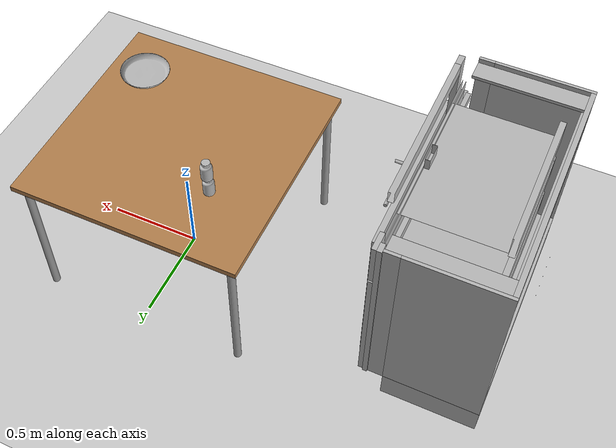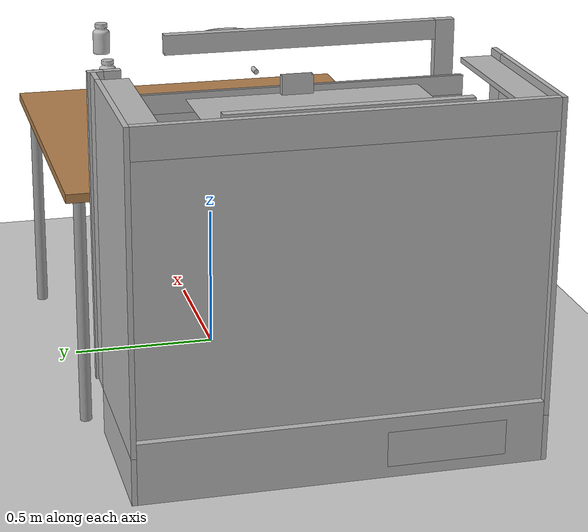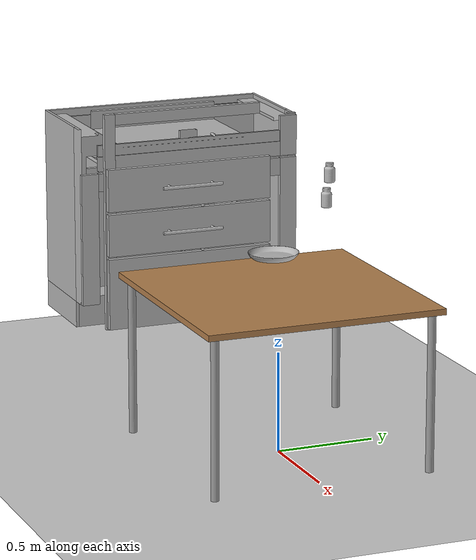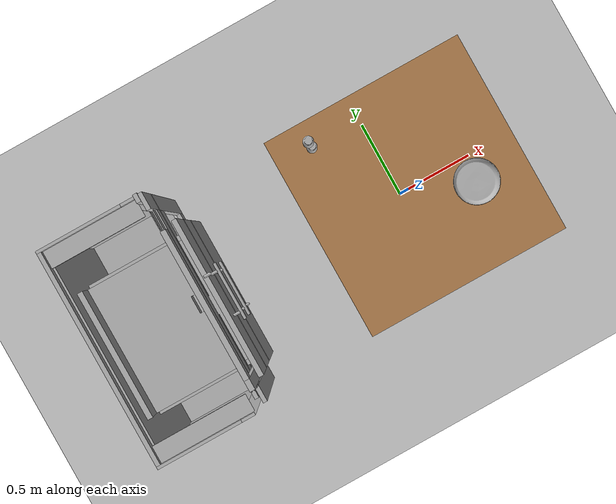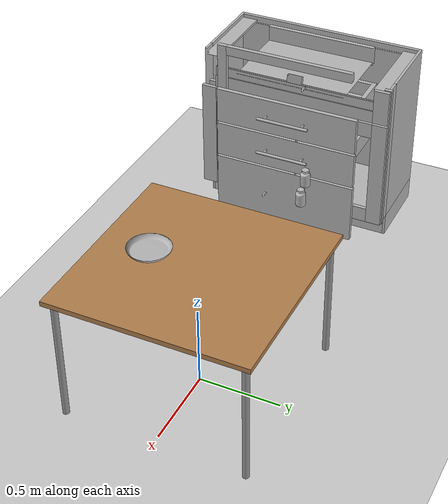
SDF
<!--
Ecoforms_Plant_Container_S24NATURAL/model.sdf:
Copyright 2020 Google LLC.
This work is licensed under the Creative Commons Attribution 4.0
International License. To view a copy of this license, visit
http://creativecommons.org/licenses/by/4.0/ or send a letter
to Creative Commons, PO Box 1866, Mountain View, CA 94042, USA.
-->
<sdf version="1.7">
 <world name="default">
  <gravity>0 0 -9.8</gravity>
  <magnetic_field>6e-06 2.3e-05 -4.2e-05</magnetic_field>
  <atmosphere type="adiabatic"/>
  <max_contacts>100</max_contacts>
  <physics type="ode">
   <max_step_size>0.001</max_step_size>
   <real_time_factor>1</real_time_factor>
   <real_time_update_rate>1000</real_time_update_rate>
   <constraints>
    <contact_max_correcting_vel>1</contact_max_correcting_vel>
    <contact_surface_layer>0.001</contact_surface_layer>
   </constraints>
  </physics>
  <scene><ambient>0.4 0.4 0.4 1</ambient><background>0.7 0.7 0.7 1</background><shadows>1</shadows></scene>
  <spherical_coordinates>
   <surface_model>EARTH_WGS84</surface_model>
   <latitude_deg>0</latitude_deg>
   <longitude_deg>0</longitude_deg>
   <elevation>0</elevation>
   <heading_deg>0</heading_deg>
  </spherical_coordinates>
  <include><uri>model://ground_plane</uri></include>
  <include><uri>model://sun</uri></include>
  <include><uri>model://Table</uri><name>table</name><static>1</static></include>
  <include>
   <uri>model://cabinet_1076</uri>
   <name>cabinet</name>
   <name>cabinet</name>
   <pose>-1.5 0.0 0.866007 0 0 -3.1416</pose>
   <scale>1 1 1</scale>
   <static>1</static>
  </include>
  <include>
   <uri>model://Ecoforms_Plant_Container_S24NATURAL</uri>
   <name>brown_tray</name>
   <pose>0.2516260262100779 -0.1348872667499429 1.04658 0.0 0.0 0.0</pose>
  </include>
  <include>
   <uri>model://Spritz_Easter_Basket_Plastic_Teal</uri>
   <name>bright_blue_basket</name>
   <pose>-0.39794159109294325 0.42219236712673014 1.094462 0.0 0.0 0.0</pose>
  </include>
  <include>
   <uri>model://Hyaluronic_Acid</uri>
   <name>yellow_medication_bottle</name>
   <pose>-0.40654893817285426 0.4413598597473906 1.2179145 0.0 0.0 0.0</pose>
  </include>
 </world>
</sdf>

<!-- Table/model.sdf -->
<sdf version="1.5">
  <model name="Table">
    <static>true</static>
    <link name="link">
      <gravity>1</gravity>
      <inertial>
        <mass>10.0</mass>
      </inertial>
      <collision name="surface">
        <pose>0 0 0.8 0 0 0</pose>
        <geometry>
          <box>
            <size>1.2 1.2 0.03</size>
          </box>
        </geometry>
        <surface>
          <friction>
            <ode>
              <mu>0.8</mu>
              <mu2>0.6</mu2>
            </ode>
          </friction>
        </surface>
      </collision>
      <visual name="visual1">
        <pose>0 0 0.8 0 0 0</pose>
        <geometry>
          <box>
            <size>1.2 1.2 0.03</size>
          </box>
        </geometry>
        <material>
          <diffuse>1.0 1.0 1.0</diffuse>
          <script>
            <uri>file://media/materials/scripts/gazebo.material</uri>
            <name>Gazebo/Wood</name>
          </script>
          <!-- PBR for Ignition, material scripts for gazebo classic-->
          <pbr>
            <metal>
              <albedo_map>model://Table/Table_Diffuse.jpg</albedo_map>
            </metal>
          </pbr>
        </material>
      </visual>
      <collision name="front_left_leg">
        <pose>0.55 0.55 0.4 0 0 0</pose>
        <geometry>
          <cylinder>
            <radius>0.02</radius>
            <length>0.8</length>
          </cylinder>
        </geometry>
      </collision>
      <visual name="front_left_leg_visual">
        <pose>0.55 0.55 0.4 0 0 0</pose>
        <geometry>
          <cylinder>
            <radius>0.02</radius>
            <length>0.8</length>
          </cylinder>
        </geometry>
        <material>
          <diffuse>0.5 0.5 0.5</diffuse>
          <script>
            <uri>file://media/materials/scripts/gazebo.material</uri>
            <name>Gazebo/Grey</name>
          </script>
        </material>
      </visual>
      <collision name="front_right_leg">
        <pose>0.55 -0.55 0.4 0 0 0</pose>
        <geometry>
          <cylinder>
            <radius>0.02</radius>
            <length>0.8</length>
          </cylinder>
        </geometry>
      </collision>
      <visual name="front_right_leg_visual">
        <pose>0.55 -0.55 0.4 0 0 0</pose>
        <geometry>
          <cylinder>
            <radius>0.02</radius>
            <length>0.8</length>
          </cylinder>
        </geometry>
        <material>
          <diffuse>0.5 0.5 0.5</diffuse>
          <script>
            <uri>file://media/materials/scripts/gazebo.material</uri>
            <name>Gazebo/Grey</name>
          </script>
        </material>
      </visual>
      <collision name="back_right_leg">
        <pose>-0.55 -0.55 0.4 0 0 0</pose>
        <geometry>
          <cylinder>
            <radius>0.02</radius>
            <length>0.8</length>
          </cylinder>
        </geometry>
      </collision>
      <visual name="back_right_leg_visual">
        <pose>-0.55 -0.55 0.4 0 0 0</pose>
        <geometry>
          <cylinder>
            <radius>0.02</radius>
            <length>0.8</length>
          </cylinder>
        </geometry>
        <material>
          <diffuse>0.5 0.5 0.5</diffuse>
          <script>
            <uri>file://media/materials/scripts/gazebo.material</uri>
            <name>Gazebo/Grey</name>
          </script>
        </material>
      </visual>
      <collision name="back_left_leg">
        <pose>-0.55 0.55 0.4 0 0 0</pose>
        <geometry>
          <cylinder>
            <radius>0.02</radius>
            <length>0.8</length>
          </cylinder>
        </geometry>
      </collision>
      <visual name="back_left_leg_visual">
        <pose>-0.55 0.55 0.4 0 0 0</pose>
        <geometry>
          <cylinder>
            <radius>0.02</radius>
            <length>0.8</length>
          </cylinder>
        </geometry>
        <material>
          <diffuse>0.5 0.5 0.5</diffuse>
          <script>
            <uri>file://media/materials/scripts/gazebo.material</uri>
            <name>Gazebo/Grey</name>
          </script>
        </material>
      </visual>
    </link>
  </model>
</sdf>

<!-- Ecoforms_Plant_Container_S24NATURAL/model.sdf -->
<sdf version="1.6">
  <model name="Ecoforms_Plant_Container_S24NATURAL">
    <link name="link_0">
      <visual name="visual">
        <geometry>
          <mesh>
            <uri>meshes/model.obj</uri>
          </mesh>
        </geometry>
      </visual>
      <collision name="collision_0">
        <geometry>
          <mesh>
            <uri>meshes/model.obj</uri>
          </mesh>
        </geometry>
      </collision>
    </link>
  </model>
</sdf>

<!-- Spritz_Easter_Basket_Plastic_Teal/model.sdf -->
<sdf version="1.6">
  <model name="Spritz_Easter_Basket_Plastic_Teal">
    <link name="link_0">
      <visual name="visual">
        <geometry>
          <mesh>
            <uri>meshes/model.obj</uri>
          </mesh>
        </geometry>
      </visual>
      <collision name="collision_0">
        <geometry>
          <mesh>
            <uri>meshes/model.obj</uri>
          </mesh>
        </geometry>
      </collision>
    </link>
  </model>
</sdf>

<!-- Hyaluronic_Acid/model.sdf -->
<sdf version="1.6">
  <model name="Hyaluronic_Acid">
    <link name="link_0">
      <visual name="visual">
        <geometry>
          <mesh>
            <uri>meshes/model.obj</uri>
          </mesh>
        </geometry>
      </visual>
      <collision name="collision_0">
        <geometry>
          <mesh>
            <uri>meshes/model.obj</uri>
          </mesh>
        </geometry>
      </collision>
    </link>
  </model>
</sdf>
